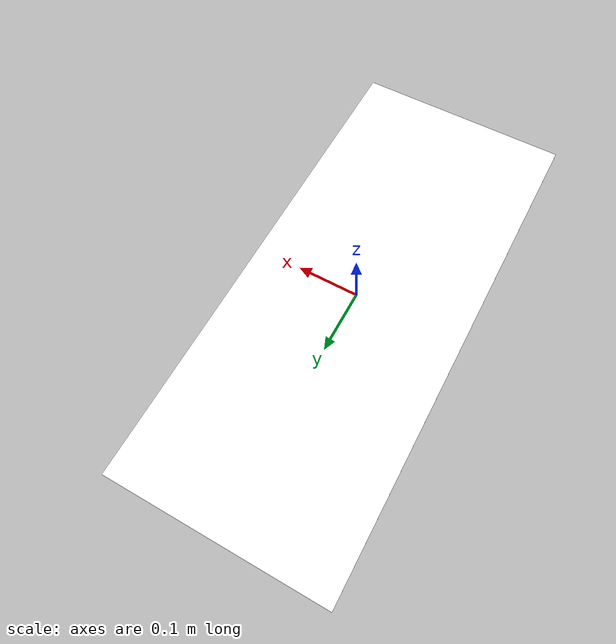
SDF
<?xml version='1.0'?>
<sdf version='1.6'>
  <model name='race_track2'>
    <static>true</static>
    <link name='link'>
      <visual name='visual'>
        <geometry>
          <box>
            <size>0.35 0.788 0.000553</size>
          </box>
        </geometry>
        <material>
          <script>
            <name>RaceTrack2/track2</name>
	    <uri>model://racetrack2/materials/scripts</uri>
            <uri>model://racetrack2/materials/textures</uri>
          </script>
          <ambient>1 1 1 1</ambient>
          <diffuse>1 1 1 1</diffuse>
          <specular>0.01 0.01 0.01 1</specular>
          <emissive>1 1 1 1</emissive>
        </material>
        <transparency>0</transparency>
      </visual>
      <collision name='collision'>
        <geometry>
          <box>
            <size>0.35 0.788 0.000553</size>
          </box>
        </geometry>
	<surface>
          <friction>
            <ode>
              <mu>100</mu>
              <mu2>50</mu2>
            </ode>
          </friction>
        </surface>
      </collision>
    </link>
  </model>
</sdf>
